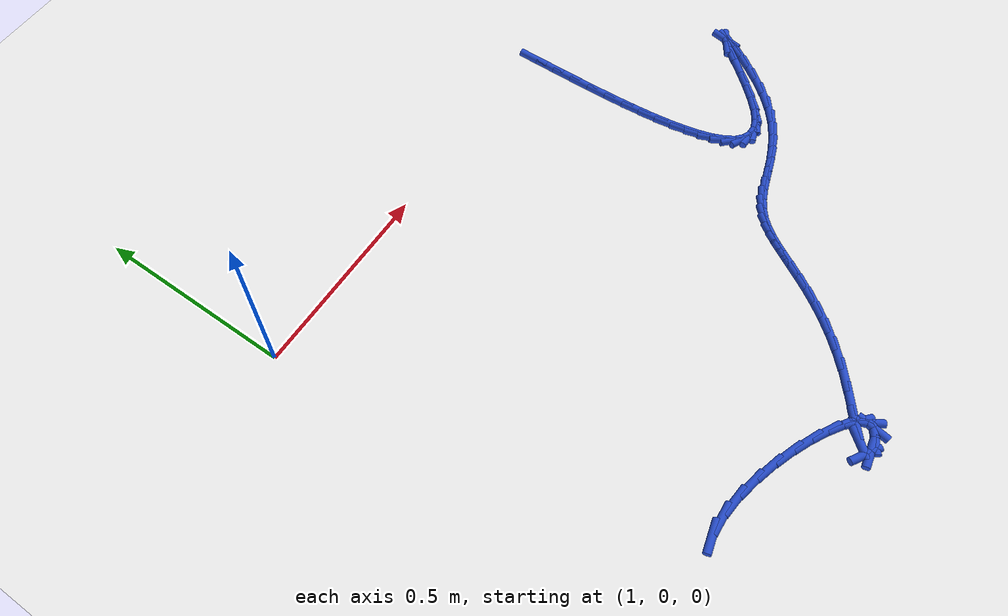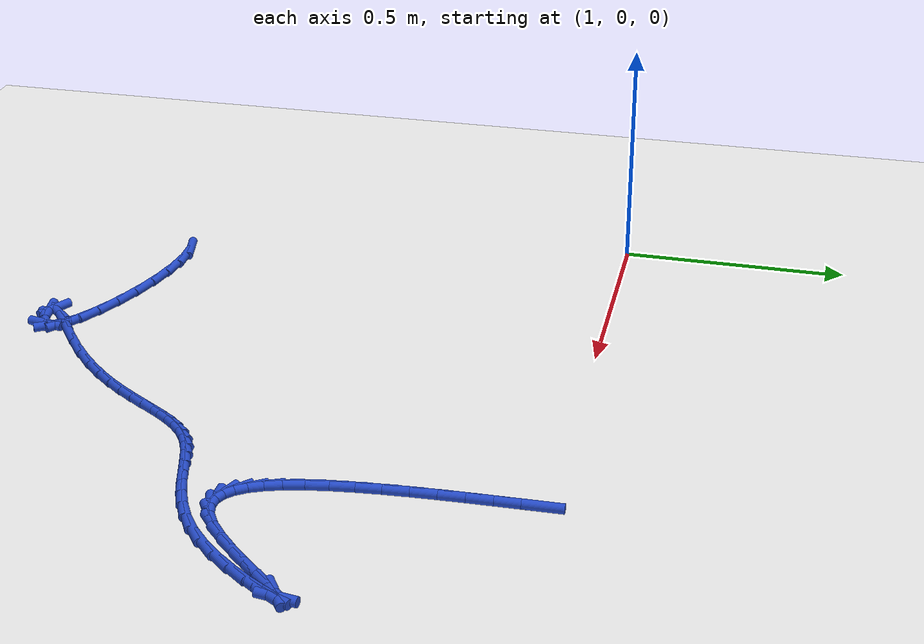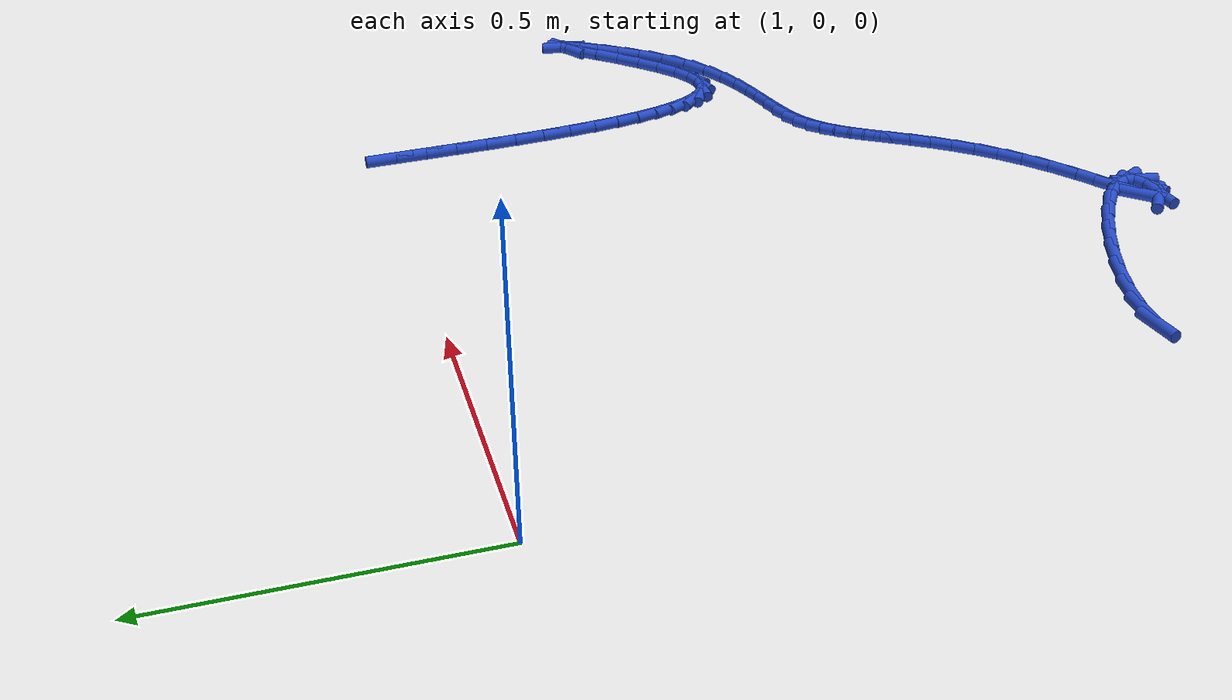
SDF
<sdf version="1.6">
 <world name="default">
  <model name="ground_plane">
   <static>1</static>
   <link name="link">
    <collision name="collision">
     <geometry><plane><normal>0 0 1</normal><size>100 100</size></plane></geometry>
     <surface><friction><ode><mu>100</mu><mu2>50</mu2></ode></friction></surface>
    </collision>
    <visual name="visual">
     <cast_shadows>0</cast_shadows>
     <geometry><plane><normal>0 0 1</normal><size>100 100</size></plane></geometry>
     <material>
      <script><uri>file://media/materials/scripts/gazebo.material</uri><name>Gazebo/WhiteGlow</name></script>
     </material>
    </visual>
   </link>
  </model>
  <model name="line">
   <link name="link_147">
    <pose>2.0611543120211264 -0.010461979637083191 0.01 0 1.57 -1.5509774519351642</pose>
    <collision name="collision">
     <geometry><cylinder><radius>0.01</radius><length>0.08</length></cylinder></geometry>
    </collision>
    <visual name="visual">
     <material>
      <script><name>Gazebo/Blue</name><uri>file://media/materials/scripts/gazebo.material</uri></script>
     </material>
     <geometry><cylinder><radius>0.01</radius><length>0.08</length></cylinder></geometry>
    </visual>
   </link>
   <link name="link_148">
    <pose>2.0621592273593397 -0.06116030479683935 0.01 0 1.57 -1.549474797289015</pose>
    <collision name="collision">
     <geometry><cylinder><radius>0.01</radius><length>0.08</length></cylinder></geometry>
    </collision>
    <visual name="visual">
     <material>
      <script><name>Gazebo/Blue</name><uri>file://media/materials/scripts/gazebo.material</uri></script>
     </material>
     <geometry><cylinder><radius>0.01</radius><length>0.08</length></cylinder></geometry>
    </visual>
   </link>
   <link name="link_149">
    <pose>2.0632646716212597 -0.11299883458318614 0.01 0 1.57 -1.5442666808522096</pose>
    <collision name="collision">
     <geometry><cylinder><radius>0.01</radius><length>0.08</length></cylinder></geometry>
    </collision>
    <visual name="visual">
     <material>
      <script><name>Gazebo/Blue</name><uri>file://media/materials/scripts/gazebo.material</uri></script>
     </material>
     <geometry><cylinder><radius>0.01</radius><length>0.08</length></cylinder></geometry>
    </visual>
   </link>
   <link name="link_150">
    <pose>2.06465350074113 -0.16533663351317263 0.01 0 1.57 -1.5352709084533727</pose>
    <collision name="collision">
     <geometry><cylinder><radius>0.01</radius><length>0.08</length></cylinder></geometry>
    </collision>
    <visual name="visual">
     <material>
      <script><name>Gazebo/Blue</name><uri>file://media/materials/scripts/gazebo.material</uri></script>
     </material>
     <geometry><cylinder><radius>0.01</radius><length>0.08</length></cylinder></geometry>
    </visual>
   </link>
   <link name="link_151">
    <pose>2.0665085706531934 -0.21753276610384759 0.01 0 1.57 -1.522128414002141</pose>
    <collision name="collision">
     <geometry><cylinder><radius>0.01</radius><length>0.08</length></cylinder></geometry>
    </collision>
    <visual name="visual">
     <material>
      <script><name>Gazebo/Blue</name><uri>file://media/materials/scripts/gazebo.material</uri></script>
     </material>
     <geometry><cylinder><radius>0.01</radius><length>0.08</length></cylinder></geometry>
    </visual>
   </link>
   <link name="link_152">
    <pose>2.0690127372916924 -0.2689462968722586 0.01 0 1.57 -1.5041593937868303</pose>
    <collision name="collision">
     <geometry><cylinder><radius>0.01</radius><length>0.08</length></cylinder></geometry>
    </collision>
    <visual name="visual">
     <material>
      <script><name>Gazebo/Blue</name><uri>file://media/materials/scripts/gazebo.material</uri></script>
     </material>
     <geometry><cylinder><radius>0.01</radius><length>0.08</length></cylinder></geometry>
    </visual>
   </link>
   <link name="link_153">
    <pose>2.0723488565908723 -0.318936290335458 0.01 0 1.57 -1.48025931814508</pose>
    <collision name="collision">
     <geometry><cylinder><radius>0.01</radius><length>0.08</length></cylinder></geometry>
    </collision>
    <visual name="visual">
     <material>
      <script><name>Gazebo/Blue</name><uri>file://media/materials/scripts/gazebo.material</uri></script>
     </material>
     <geometry><cylinder><radius>0.01</radius><length>0.08</length></cylinder></geometry>
    </visual>
   </link>
   <link name="link_154">
    <pose>2.076699784484975 -0.36686181101049276 0.01 0 1.57 -1.4487047412177834</pose>
    <collision name="collision">
     <geometry><cylinder><radius>0.01</radius><length>0.08</length></cylinder></geometry>
    </collision>
    <visual name="visual">
     <material>
      <script><name>Gazebo/Blue</name><uri>file://media/materials/scripts/gazebo.material</uri></script>
     </material>
     <geometry><cylinder><radius>0.01</radius><length>0.08</length></cylinder></geometry>
    </visual>
   </link>
   <link name="link_155">
    <pose>2.0822483769082445 -0.4120819234144121 0.01 0 1.57 -1.4068061464861068</pose>
    <collision name="collision">
     <geometry><cylinder><radius>0.01</radius><length>0.08</length></cylinder></geometry>
    </collision>
    <visual name="visual">
     <material>
      <script><name>Gazebo/Blue</name><uri>file://media/materials/scripts/gazebo.material</uri></script>
     </material>
     <geometry><cylinder><radius>0.01</radius><length>0.08</length></cylinder></geometry>
    </visual>
   </link>
   <link name="link_156">
    <pose>2.0891774897949236 -0.4539556920642649 0.01 0 1.57 -1.3502852260576796</pose>
    <collision name="collision">
     <geometry><cylinder><radius>0.01</radius><length>0.08</length></cylinder></geometry>
    </collision>
    <visual name="visual">
     <material>
      <script><name>Gazebo/Blue</name><uri>file://media/materials/scripts/gazebo.material</uri></script>
     </material>
     <geometry><cylinder><radius>0.01</radius><length>0.08</length></cylinder></geometry>
    </visual>
   </link>
   <link name="link_157">
    <pose>2.0976699790792557 -0.4918421814771002 0.01 0 1.57 -1.2721489050562054</pose>
    <collision name="collision">
     <geometry><cylinder><radius>0.01</radius><length>0.08</length></cylinder></geometry>
    </collision>
    <visual name="visual">
     <material>
      <script><name>Gazebo/Blue</name><uri>file://media/materials/scripts/gazebo.material</uri></script>
     </material>
     <geometry><cylinder><radius>0.01</radius><length>0.08</length></cylinder></geometry>
    </visual>
   </link>
   <link name="link_158">
    <pose>2.107908700695485 -0.5251004561699669 0.01 0 1.57 -1.1607102933476627</pose>
    <collision name="collision">
     <geometry><cylinder><radius>0.01</radius><length>0.08</length></cylinder></geometry>
    </collision>
    <visual name="visual">
     <material>
      <script><name>Gazebo/Blue</name><uri>file://media/materials/scripts/gazebo.material</uri></script>
     </material>
     <geometry><cylinder><radius>0.01</radius><length>0.08</length></cylinder></geometry>
    </visual>
   </link>
   <link name="link_159">
    <pose>2.1200765105778534 -0.5530895806599141 0.01 0 1.57 -0.9967048755928861</pose>
    <collision name="collision">
     <geometry><cylinder><radius>0.01</radius><length>0.08</length></cylinder></geometry>
    </collision>
    <visual name="visual">
     <material>
      <script><name>Gazebo/Blue</name><uri>file://media/materials/scripts/gazebo.material</uri></script>
     </material>
     <geometry><cylinder><radius>0.01</radius><length>0.08</length></cylinder></geometry>
    </visual>
   </link>
   <link name="link_160">
    <pose>2.134356264660606 -0.5751686194639907 0.01 0 1.57 -0.7528099306161224</pose>
    <collision name="collision">
     <geometry><cylinder><radius>0.01</radius><length>0.08</length></cylinder></geometry>
    </collision>
    <visual name="visual">
     <material>
      <script><name>Gazebo/Blue</name><uri>file://media/materials/scripts/gazebo.material</uri></script>
     </material>
     <geometry><cylinder><radius>0.01</radius><length>0.08</length></cylinder></geometry>
    </visual>
   </link>
   <link name="link_161">
    <pose>2.1509308188779843 -0.5906966370992457 0.01 0 1.57 -0.41244211593292934</pose>
    <collision name="collision">
     <geometry><cylinder><radius>0.01</radius><length>0.08</length></cylinder></geometry>
    </collision>
    <visual name="visual">
     <material>
      <script><name>Gazebo/Blue</name><uri>file://media/materials/scripts/gazebo.material</uri></script>
     </material>
     <geometry><cylinder><radius>0.01</radius><length>0.08</length></cylinder></geometry>
    </visual>
   </link>
   <link name="link_162">
    <pose>2.169983029164233 -0.599032698082728 0.01 0 1.57 -0.023169771101456314</pose>
    <collision name="collision">
     <geometry><cylinder><radius>0.01</radius><length>0.08</length></cylinder></geometry>
    </collision>
    <visual name="visual">
     <material>
      <script><name>Gazebo/Blue</name><uri>file://media/materials/scripts/gazebo.material</uri></script>
     </material>
     <geometry><cylinder><radius>0.01</radius><length>0.08</length></cylinder></geometry>
    </visual>
   </link>
   <link name="link_163">
    <pose>2.1916957514535946 -0.5995358669314865 0.01 0 1.57 0.313860929193127</pose>
    <collision name="collision">
     <geometry><cylinder><radius>0.01</radius><length>0.08</length></cylinder></geometry>
    </collision>
    <visual name="visual">
     <material>
      <script><name>Gazebo/Blue</name><uri>file://media/materials/scripts/gazebo.material</uri></script>
     </material>
     <geometry><cylinder><radius>0.01</radius><length>0.08</length></cylinder></geometry>
    </visual>
   </link>
   <link name="link_164">
    <pose>2.2162518416803128 -0.5915652081625704 0.01 0 1.57 0.5545772886350152</pose>
    <collision name="collision">
     <geometry><cylinder><radius>0.01</radius><length>0.08</length></cylinder></geometry>
    </collision>
    <visual name="visual">
     <material>
      <script><name>Gazebo/Blue</name><uri>file://media/materials/scripts/gazebo.material</uri></script>
     </material>
     <geometry><cylinder><radius>0.01</radius><length>0.08</length></cylinder></geometry>
    </visual>
   </link>
   <link name="link_165">
    <pose>2.2438339027798753 -0.5744803040544402 0.01 0 1.57 0.7069387026440537</pose>
    <collision name="collision">
     <geometry><cylinder><radius>0.01</radius><length>0.08</length></cylinder></geometry>
    </collision>
    <visual name="visual">
     <material>
      <script><name>Gazebo/Blue</name><uri>file://media/materials/scripts/gazebo.material</uri></script>
     </material>
     <geometry><cylinder><radius>0.01</radius><length>0.08</length></cylinder></geometry>
    </visual>
   </link>
   <link name="link_166">
    <pose>2.2741736351213473 -0.5485635080187564 0.01 0 1.57 0.788451773862675</pose>
    <collision name="collision">
     <geometry><cylinder><radius>0.01</radius><length>0.08</length></cylinder></geometry>
    </collision>
    <visual name="visual">
     <material>
      <script><name>Gazebo/Blue</name><uri>file://media/materials/scripts/gazebo.material</uri></script>
     </material>
     <geometry><cylinder><radius>0.01</radius><length>0.08</length></cylinder></geometry>
    </visual>
   </link>
   <link name="link_167">
    <pose>2.305622346863001 -0.5169221431601434 0.01 0 1.57 0.8331221551957187</pose>
    <collision name="collision">
     <geometry><cylinder><radius>0.01</radius><length>0.08</length></cylinder></geometry>
    </collision>
    <visual name="visual">
     <material>
      <script><name>Gazebo/Blue</name><uri>file://media/materials/scripts/gazebo.material</uri></script>
     </material>
     <geometry><cylinder><radius>0.01</radius><length>0.08</length></cylinder></geometry>
    </visual>
   </link>
   <link name="link_168">
    <pose>2.336268093693589 -0.4832022781963749 0.01 0 1.57 0.8555431865400999</pose>
    <collision name="collision">
     <geometry><cylinder><radius>0.01</radius><length>0.08</length></cylinder></geometry>
    </collision>
    <visual name="visual">
     <material>
      <script><name>Gazebo/Blue</name><uri>file://media/materials/scripts/gazebo.material</uri></script>
     </material>
     <geometry><cylinder><radius>0.01</radius><length>0.08</length></cylinder></geometry>
    </visual>
   </link>
   <link name="link_169">
    <pose>2.364198931301862 -0.4510499818452259 0.01 0 1.57 0.8576147896698619</pose>
    <collision name="collision">
     <geometry><cylinder><radius>0.01</radius><length>0.08</length></cylinder></geometry>
    </collision>
    <visual name="visual">
     <material>
      <script><name>Gazebo/Blue</name><uri>file://media/materials/scripts/gazebo.material</uri></script>
     </material>
     <geometry><cylinder><radius>0.01</radius><length>0.08</length></cylinder></geometry>
    </visual>
   </link>
   <link name="link_170">
    <pose>2.3875029153765737 -0.4241113228244677 0.01 0 1.57 0.8230844071525463</pose>
    <collision name="collision">
     <geometry><cylinder><radius>0.01</radius><length>0.08</length></cylinder></geometry>
    </collision>
    <visual name="visual">
     <material>
      <script><name>Gazebo/Blue</name><uri>file://media/materials/scripts/gazebo.material</uri></script>
     </material>
     <geometry><cylinder><radius>0.01</radius><length>0.08</length></cylinder></geometry>
    </visual>
   </link>
   <link name="link_171">
    <pose>2.404268101606475 -0.40603236985187535 0.01 0 1.57 0.5905329469020204</pose>
    <collision name="collision">
     <geometry><cylinder><radius>0.01</radius><length>0.08</length></cylinder></geometry>
    </collision>
    <visual name="visual">
     <material>
      <script><name>Gazebo/Blue</name><uri>file://media/materials/scripts/gazebo.material</uri></script>
     </material>
     <geometry><cylinder><radius>0.01</radius><length>0.08</length></cylinder></geometry>
    </visual>
   </link>
   <link name="link_172">
    <pose>2.41258269804712 -0.4004588647882971 0.01 0 1.57 1.4205634051946396</pose>
    <collision name="collision">
     <geometry><cylinder><radius>0.01</radius><length>0.08</length></cylinder></geometry>
    </collision>
    <visual name="visual">
     <material>
      <script><name>Gazebo/Blue</name><uri>file://media/materials/scripts/gazebo.material</uri></script>
     </material>
     <geometry><cylinder><radius>0.01</radius><length>0.08</length></cylinder></geometry>
    </visual>
   </link>
   <link name="link_173">
    <pose>2.411196280569169 -0.40961778472653576 0.01 0 1.57 1.1283777249353806</pose>
    <collision name="collision">
     <geometry><cylinder><radius>0.01</radius><length>0.08</length></cylinder></geometry>
    </collision>
    <visual name="visual">
     <material>
      <script><name>Gazebo/Blue</name><uri>file://media/materials/scripts/gazebo.material</uri></script>
     </material>
     <geometry><cylinder><radius>0.01</radius><length>0.08</length></cylinder></geometry>
    </visual>
   </link>
   <link name="link_174">
    <pose>2.4010351877707614 -0.4310665201910689 0.01 0 1.57 1.0460271013182592</pose>
    <collision name="collision">
     <geometry><cylinder><radius>0.01</radius><length>0.08</length></cylinder></geometry>
    </collision>
    <visual name="visual">
     <material>
      <script><name>Gazebo/Blue</name><uri>file://media/materials/scripts/gazebo.material</uri></script>
     </material>
     <geometry><cylinder><radius>0.01</radius><length>0.08</length></cylinder></geometry>
    </visual>
   </link>
   <link name="link_175">
    <pose>2.3834729385480333 -0.46140317152431104 0.01 0 1.57 0.9884560450684023</pose>
    <collision name="collision">
     <geometry><cylinder><radius>0.01</radius><length>0.08</length></cylinder></geometry>
    </collision>
    <visual name="visual">
     <material>
      <script><name>Gazebo/Blue</name><uri>file://media/materials/scripts/gazebo.material</uri></script>
     </material>
     <geometry><cylinder><radius>0.01</radius><length>0.08</length></cylinder></geometry>
    </visual>
   </link>
   <link name="link_176">
    <pose>2.3598830517971243 -0.4972258390686773 0.01 0 1.57 0.9304443590158629</pose>
    <collision name="collision">
     <geometry><cylinder><radius>0.01</radius><length>0.08</length></cylinder></geometry>
    </collision>
    <visual name="visual">
     <material>
      <script><name>Gazebo/Blue</name><uri>file://media/materials/scripts/gazebo.material</uri></script>
     </material>
     <geometry><cylinder><radius>0.01</radius><length>0.08</length></cylinder></geometry>
    </visual>
   </link>
   <link name="link_177">
    <pose>2.331639046414169 -0.5351326231665817 0.01 0 1.57 0.8596137949605455</pose>
    <collision name="collision">
     <geometry><cylinder><radius>0.01</radius><length>0.08</length></cylinder></geometry>
    </collision>
    <visual name="visual">
     <material>
      <script><name>Gazebo/Blue</name><uri>file://media/materials/scripts/gazebo.material</uri></script>
     </material>
     <geometry><cylinder><radius>0.01</radius><length>0.08</length></cylinder></geometry>
    </visual>
   </link>
   <link name="link_178">
    <pose>2.300114441295307 -0.5717216241604395 0.01 0 1.57 0.7618944416582972</pose>
    <collision name="collision">
     <geometry><cylinder><radius>0.01</radius><length>0.08</length></cylinder></geometry>
    </collision>
    <visual name="visual">
     <material>
      <script><name>Gazebo/Blue</name><uri>file://media/materials/scripts/gazebo.material</uri></script>
     </material>
     <geometry><cylinder><radius>0.01</radius><length>0.08</length></cylinder></geometry>
    </visual>
   </link>
   <link name="link_179">
    <pose>2.266676347655177 -0.6036236978339786 0.01 0 1.57 0.6402758263875179</pose>
    <collision name="collision">
     <geometry><cylinder><radius>0.01</radius><length>0.08</length></cylinder></geometry>
    </collision>
    <visual name="visual">
     <material>
      <script><name>Gazebo/Blue</name><uri>file://media/materials/scripts/gazebo.material</uri></script>
     </material>
     <geometry><cylinder><radius>0.01</radius><length>0.08</length></cylinder></geometry>
    </visual>
   </link>
   <link name="link_180">
    <pose>2.2323549125171693 -0.6291922279704988 0.01 0 1.57 0.525971358672393</pose>
    <collision name="collision">
     <geometry><cylinder><radius>0.01</radius><length>0.08</length></cylinder></geometry>
    </collision>
    <visual name="visual">
     <material>
      <script><name>Gazebo/Blue</name><uri>file://media/materials/scripts/gazebo.material</uri></script>
     </material>
     <geometry><cylinder><radius>0.01</radius><length>0.08</length></cylinder></geometry>
    </visual>
   </link>
   <link name="link_181">
    <pose>2.197683609224731 -0.6493195456437174 0.01 0 1.57 0.4287346770960441</pose>
    <collision name="collision">
     <geometry><cylinder><radius>0.01</radius><length>0.08</length></cylinder></geometry>
    </collision>
    <visual name="visual">
     <material>
      <script><name>Gazebo/Blue</name><uri>file://media/materials/scripts/gazebo.material</uri></script>
     </material>
     <geometry><cylinder><radius>0.01</radius><length>0.08</length></cylinder></geometry>
    </visual>
   </link>
   <link name="link_182">
    <pose>2.1631560467575577 -0.665101764657208 0.01 0 1.57 0.3542204349589233</pose>
    <collision name="collision">
     <geometry><cylinder><radius>0.01</radius><length>0.08</length></cylinder></geometry>
    </collision>
    <visual name="visual">
     <material>
      <script><name>Gazebo/Blue</name><uri>file://media/materials/scripts/gazebo.material</uri></script>
     </material>
     <geometry><cylinder><radius>0.01</radius><length>0.08</length></cylinder></geometry>
    </visual>
   </link>
   <link name="link_183">
    <pose>2.1292658340953414 -0.6776349988145444 0.01 0 1.57 0.30685939961179637</pose>
    <collision name="collision">
     <geometry><cylinder><radius>0.01</radius><length>0.08</length></cylinder></geometry>
    </collision>
    <visual name="visual">
     <material>
      <script><name>Gazebo/Blue</name><uri>file://media/materials/scripts/gazebo.material</uri></script>
     </material>
     <geometry><cylinder><radius>0.01</radius><length>0.08</length></cylinder></geometry>
    </visual>
   </link>
   <link name="link_184">
    <pose>2.096506580217775 -0.688015361919299 0.01 0 1.57 0.2909616839103315</pose>
    <collision name="collision">
     <geometry><cylinder><radius>0.01</radius><length>0.08</length></cylinder></geometry>
    </collision>
    <visual name="visual">
     <material>
      <script><name>Gazebo/Blue</name><uri>file://media/materials/scripts/gazebo.material</uri></script>
     </material>
     <geometry><cylinder><radius>0.01</radius><length>0.08</length></cylinder></geometry>
    </visual>
   </link>
   <link name="link_185">
    <pose>2.06537189410455 -0.6973389677750462 0.01 0 1.57 0.31212946161935506</pose>
    <collision name="collision">
     <geometry><cylinder><radius>0.01</radius><length>0.08</length></cylinder></geometry>
    </collision>
    <visual name="visual">
     <material>
      <script><name>Gazebo/Blue</name><uri>file://media/materials/scripts/gazebo.material</uri></script>
     </material>
     <geometry><cylinder><radius>0.01</radius><length>0.08</length></cylinder></geometry>
    </visual>
   </link>
   <link name="link_186">
    <pose>2.0363553847353595 -0.7067019301853592 0.01 0 1.57 0.3784329096512303</pose>
    <collision name="collision">
     <geometry><cylinder><radius>0.01</radius><length>0.08</length></cylinder></geometry>
    </collision>
    <visual name="visual">
     <material>
      <script><name>Gazebo/Blue</name><uri>file://media/materials/scripts/gazebo.material</uri></script>
     </material>
     <geometry><cylinder><radius>0.01</radius><length>0.08</length></cylinder></geometry>
    </visual>
   </link>
   <link name="link_187">
    <pose>2.0099506610898965 -0.7172003629538108 0.01 0 1.57 0.4987577987291841</pose>
    <collision name="collision">
     <geometry><cylinder><radius>0.01</radius><length>0.08</length></cylinder></geometry>
    </collision>
    <visual name="visual">
     <material>
      <script><name>Gazebo/Blue</name><uri>file://media/materials/scripts/gazebo.material</uri></script>
     </material>
     <geometry><cylinder><radius>0.01</radius><length>0.08</length></cylinder></geometry>
    </visual>
   </link>
   <link name="link_188">
    <pose>1.9866268735359158 -0.7299046119816777 0.01 0 1.57 0.6472622356242058</pose>
    <collision name="collision">
     <geometry><cylinder><radius>0.01</radius><length>0.08</length></cylinder></geometry>
    </collision>
    <visual name="visual">
     <material>
      <script><name>Gazebo/Blue</name><uri>file://media/materials/scripts/gazebo.material</uri></script>
     </material>
     <geometry><cylinder><radius>0.01</radius><length>0.08</length></cylinder></geometry>
    </visual>
   </link>
   <link name="link_189">
    <pose>1.966281940584422 -0.7452832127849497 0.01 0 1.57 0.7817910725863971</pose>
    <collision name="collision">
     <geometry><cylinder><radius>0.01</radius><length>0.08</length></cylinder></geometry>
    </collision>
    <visual name="visual">
     <material>
      <script><name>Gazebo/Blue</name><uri>file://media/materials/scripts/gazebo.material</uri></script>
     </material>
     <geometry><cylinder><radius>0.01</radius><length>0.08</length></cylinder></geometry>
    </visual>
   </link>
   <link name="link_190">
    <pose>1.9482376825072978 -0.76319776361036 0.01 0 1.57 0.8895085234732826</pose>
    <collision name="collision">
     <geometry><cylinder><radius>0.01</radius><length>0.08</length></cylinder></geometry>
    </collision>
    <visual name="visual">
     <material>
      <script><name>Gazebo/Blue</name><uri>file://media/materials/scripts/gazebo.material</uri></script>
     </material>
     <geometry><cylinder><radius>0.01</radius><length>0.08</length></cylinder></geometry>
    </visual>
   </link>
   <link name="link_191">
    <pose>1.931790487666056 -0.7834830694024195 0.01 0 1.57 0.9657584784247002</pose>
    <collision name="collision">
     <geometry><cylinder><radius>0.01</radius><length>0.08</length></cylinder></geometry>
    </collision>
    <visual name="visual">
     <material>
      <script><name>Gazebo/Blue</name><uri>file://media/materials/scripts/gazebo.material</uri></script>
     </material>
     <geometry><cylinder><radius>0.01</radius><length>0.08</length></cylinder></geometry>
    </visual>
   </link>
   <link name="link_192">
    <pose>1.9162367444222137 -0.8059739351056393 0.01 0 1.57 1.0112629139386644</pose>
    <collision name="collision">
     <geometry><cylinder><radius>0.01</radius><length>0.08</length></cylinder></geometry>
    </collision>
    <visual name="visual">
     <material>
      <script><name>Gazebo/Blue</name><uri>file://media/materials/scripts/gazebo.material</uri></script>
     </material>
     <geometry><cylinder><radius>0.01</radius><length>0.08</length></cylinder></geometry>
    </visual>
   </link>
   <link name="link_193">
    <pose>1.9008728411372837 -0.83050516566453 0.01 0 1.57 1.02943522036749</pose>
    <collision name="collision">
     <geometry><cylinder><radius>0.01</radius><length>0.08</length></cylinder></geometry>
    </collision>
    <visual name="visual">
     <material>
      <script><name>Gazebo/Blue</name><uri>file://media/materials/scripts/gazebo.material</uri></script>
     </material>
     <geometry><cylinder><radius>0.01</radius><length>0.08</length></cylinder></geometry>
    </visual>
   </link>
   <link name="link_194">
    <pose>1.8849951661727813 -0.8569115660236029 0.01 0 1.57 1.0245073811607819</pose>
    <collision name="collision">
     <geometry><cylinder><radius>0.01</radius><length>0.08</length></cylinder></geometry>
    </collision>
    <visual name="visual">
     <material>
      <script><name>Gazebo/Blue</name><uri>file://media/materials/scripts/gazebo.material</uri></script>
     </material>
     <geometry><cylinder><radius>0.01</radius><length>0.08</length></cylinder></geometry>
    </visual>
   </link>
   <link name="link_195">
    <pose>1.867900107890221 -0.8850279411273684 0.01 0 1.57 1.0006963070894221</pose>
    <collision name="collision">
     <geometry><cylinder><radius>0.01</radius><length>0.08</length></cylinder></geometry>
    </collision>
    <visual name="visual">
     <material>
      <script><name>Gazebo/Blue</name><uri>file://media/materials/scripts/gazebo.material</uri></script>
     </material>
     <geometry><cylinder><radius>0.01</radius><length>0.08</length></cylinder></geometry>
    </visual>
   </link>
   <link name="link_196">
    <pose>1.8488840546511167 -0.9146890959203372 0.01 0 1.57 0.9619724879262249</pose>
    <collision name="collision">
     <geometry><cylinder><radius>0.01</radius><length>0.08</length></cylinder></geometry>
    </collision>
    <visual name="visual">
     <material>
      <script><name>Gazebo/Blue</name><uri>file://media/materials/scripts/gazebo.material</uri></script>
     </material>
     <geometry><cylinder><radius>0.01</radius><length>0.08</length></cylinder></geometry>
    </visual>
   </link>
   <link name="link_197">
    <pose>1.8272433948169833 -0.9457298353470206 0.01 0 1.57 0.9120452419685686</pose>
    <collision name="collision">
     <geometry><cylinder><radius>0.01</radius><length>0.08</length></cylinder></geometry>
    </collision>
    <visual name="visual">
     <material>
      <script><name>Gazebo/Blue</name><uri>file://media/materials/scripts/gazebo.material</uri></script>
     </material>
     <geometry><cylinder><radius>0.01</radius><length>0.08</length></cylinder></geometry>
    </visual>
   </link>
   <link name="link_198">
    <pose>1.802274516749336 -0.9779849643519294 0.01 0 1.57 0.8543619477379117</pose>
    <collision name="collision">
     <geometry><cylinder><radius>0.01</radius><length>0.08</length></cylinder></geometry>
    </collision>
    <visual name="visual">
     <material>
      <script><name>Gazebo/Blue</name><uri>file://media/materials/scripts/gazebo.material</uri></script>
     </material>
     <geometry><cylinder><radius>0.01</radius><length>0.08</length></cylinder></geometry>
    </visual>
   </link>
   <link name="link_199">
    <pose>1.773273808809689 -1.0112892878795745 0.01 0 1.57 0.7920550699466743</pose>
    <collision name="collision">
     <geometry><cylinder><radius>0.01</radius><length>0.08</length></cylinder></geometry>
    </collision>
    <visual name="visual">
     <material>
      <script><name>Gazebo/Blue</name><uri>file://media/materials/scripts/gazebo.material</uri></script>
     </material>
     <geometry><cylinder><radius>0.01</radius><length>0.08</length></cylinder></geometry>
    </visual>
   </link>
   <link name="link_200">
    <pose>1.7395376593595562 -1.0454776108744663 0.01 0 1.57 0.7278491856548148</pose>
    <collision name="collision">
     <geometry><cylinder><radius>0.01</radius><length>0.08</length></cylinder></geometry>
    </collision>
    <visual name="visual">
     <material>
      <script><name>Gazebo/Blue</name><uri>file://media/materials/scripts/gazebo.material</uri></script>
     </material>
     <geometry><cylinder><radius>0.01</radius><length>0.08</length></cylinder></geometry>
    </visual>
   </link>
   <link name="link_201">
    <pose>1.7003624567604545 -1.080384738281115 0.01 0 1.57 0.6669488344694382</pose>
    <collision name="collision">
     <geometry><cylinder><radius>0.01</radius><length>0.08</length></cylinder></geometry>
    </collision>
    <visual name="visual">
     <material>
      <script><name>Gazebo/Blue</name><uri>file://media/materials/scripts/gazebo.material</uri></script>
     </material>
     <geometry><cylinder><radius>0.01</radius><length>0.08</length></cylinder></geometry>
    </visual>
   </link>
   <link name="link_202">
    <pose>1.6555176210102953 -1.1156910709630599 0.01 0 1.57 0.6403788961883898</pose>
    <collision name="collision">
     <geometry><cylinder><radius>0.01</radius><length>0.08</length></cylinder></geometry>
    </collision>
    <visual name="visual">
     <material>
      <script><name>Gazebo/Blue</name><uri>file://media/materials/scripts/gazebo.material</uri></script>
     </material>
     <geometry><cylinder><radius>0.01</radius><length>0.08</length></cylinder></geometry>
    </visual>
   </link>
   <link name="link_203">
    <pose>1.6105661173262105 -1.1491859163424674 0.01 0 1.57 0.6698460581978118</pose>
    <collision name="collision">
     <geometry><cylinder><radius>0.01</radius><length>0.08</length></cylinder></geometry>
    </collision>
    <visual name="visual">
     <material>
      <script><name>Gazebo/Blue</name><uri>file://media/materials/scripts/gazebo.material</uri></script>
     </material>
     <geometry><cylinder><radius>0.01</radius><length>0.08</length></cylinder></geometry>
    </visual>
   </link>
   <link name="link_204">
    <pose>1.5749534740226205 -1.1773912594454334 0.01 0 1.57 0.8587435459382211</pose>
    <collision name="collision">
     <geometry><cylinder><radius>0.01</radius><length>0.08</length></cylinder></geometry>
    </collision>
    <visual name="visual">
     <material>
      <script><name>Gazebo/Blue</name><uri>file://media/materials/scripts/gazebo.material</uri></script>
     </material>
     <geometry><cylinder><radius>0.01</radius><length>0.08</length></cylinder></geometry>
    </visual>
   </link>
   <link name="link_205">
    <pose>1.5581967563475403 -1.1968057346516308 0.01 0 1.57 -0.5500586511273942</pose>
    <collision name="collision">
     <geometry><cylinder><radius>0.01</radius><length>0.08</length></cylinder></geometry>
    </collision>
    <visual name="visual">
     <material>
      <script><name>Gazebo/Blue</name><uri>file://media/materials/scripts/gazebo.material</uri></script>
     </material>
     <geometry><cylinder><radius>0.01</radius><length>0.08</length></cylinder></geometry>
    </visual>
   </link>
   <link name="link_206">
    <pose>1.569812169347117 -1.203928142290113 0.01 0 1.57 0.16540890509447675</pose>
    <collision name="collision">
     <geometry><cylinder><radius>0.01</radius><length>0.08</length></cylinder></geometry>
    </collision>
    <visual name="visual">
     <material>
      <script><name>Gazebo/Blue</name><uri>file://media/materials/scripts/gazebo.material</uri></script>
     </material>
     <geometry><cylinder><radius>0.01</radius><length>0.08</length></cylinder></geometry>
    </visual>
   </link>
   <link name="link_207">
    <pose>1.6040022030104202 -1.1982206586120159 0.01 0 1.57 0.5434310410244542</pose>
    <collision name="collision">
     <geometry><cylinder><radius>0.01</radius><length>0.08</length></cylinder></geometry>
    </collision>
    <visual name="visual">
     <material>
      <script><name>Gazebo/Blue</name><uri>file://media/materials/scripts/gazebo.material</uri></script>
     </material>
     <geometry><cylinder><radius>0.01</radius><length>0.08</length></cylinder></geometry>
    </visual>
   </link>
   <link name="link_208">
    <pose>1.6239673242562862 -1.18615966653906 0.01 0 1.57 1.401468084707029</pose>
    <collision name="collision">
     <geometry><cylinder><radius>0.01</radius><length>0.08</length></cylinder></geometry>
    </collision>
    <visual name="visual">
     <material>
      <script><name>Gazebo/Blue</name><uri>file://media/materials/scripts/gazebo.material</uri></script>
     </material>
     <geometry><cylinder><radius>0.01</radius><length>0.08</length></cylinder></geometry>
    </visual>
   </link>
   <link name="link_209">
    <pose>1.6267884044315613 -1.1696587780366163 0.01 0 1.57 -1.0242149708141723</pose>
    <collision name="collision">
     <geometry><cylinder><radius>0.01</radius><length>0.08</length></cylinder></geometry>
    </collision>
    <visual name="visual">
     <material>
      <script><name>Gazebo/Blue</name><uri>file://media/materials/scripts/gazebo.material</uri></script>
     </material>
     <geometry><cylinder><radius>0.01</radius><length>0.08</length></cylinder></geometry>
    </visual>
   </link>
   <link name="link_210">
    <pose>1.6147378512820296 -1.149852188977811 0.01 0 1.57 -0.7281627198657727</pose>
    <collision name="collision">
     <geometry><cylinder><radius>0.01</radius><length>0.08</length></cylinder></geometry>
    </collision>
    <visual name="visual">
     <material>
      <script><name>Gazebo/Blue</name><uri>file://media/materials/scripts/gazebo.material</uri></script>
     </material>
     <geometry><cylinder><radius>0.01</radius><length>0.08</length></cylinder></geometry>
    </visual>
   </link>
   <link name="link_211">
    <pose>1.5900880725534736 -1.1278740952357678 0.01 0 1.57 -0.5819945816832162</pose>
    <collision name="collision">
     <geometry><cylinder><radius>0.01</radius><length>0.08</length></cylinder></geometry>
    </collision>
    <visual name="visual">
     <material>
      <script><name>Gazebo/Blue</name><uri>file://media/materials/scripts/gazebo.material</uri></script>
     </material>
     <geometry><cylinder><radius>0.01</radius><length>0.08</length></cylinder></geometry>
    </visual>
   </link>
   <link name="link_212">
    <pose>1.555111475991677 -1.1048586926836121 0.01 0 1.57 -0.48938986329226075</pose>
    <collision name="collision">
     <geometry><cylinder><radius>0.01</radius><length>0.08</length></cylinder></geometry>
    </collision>
    <visual name="visual">
     <material>
      <script><name>Gazebo/Blue</name><uri>file://media/materials/scripts/gazebo.material</uri></script>
     </material>
     <geometry><cylinder><radius>0.01</radius><length>0.08</length></cylinder></geometry>
    </visual>
   </link>
   <link name="link_213">
    <pose>1.5120804693424232 -1.0819401771944688 0.01 0 1.57 -0.4181004993262208</pose>
    <collision name="collision">
     <geometry><cylinder><radius>0.01</radius><length>0.08</length></cylinder></geometry>
    </collision>
    <visual name="visual">
     <material>
      <script><name>Gazebo/Blue</name><uri>file://media/materials/scripts/gazebo.material</uri></script>
     </material>
     <geometry><cylinder><radius>0.01</radius><length>0.08</length></cylinder></geometry>
    </visual>
   </link>
   <link name="link_214">
    <pose>1.463267460351496 -1.0602527446414627 0.01 0 1.57 -0.3537542515258763</pose>
    <collision name="collision">
     <geometry><cylinder><radius>0.01</radius><length>0.08</length></cylinder></geometry>
    </collision>
    <visual name="visual">
     <material>
      <script><name>Gazebo/Blue</name><uri>file://media/materials/scripts/gazebo.material</uri></script>
     </material>
     <geometry><cylinder><radius>0.01</radius><length>0.08</length></cylinder></geometry>
    </visual>
   </link>
   <link name="link_215">
    <pose>1.4109448567646778 -1.0409305908977193 0.01 0 1.57 -0.2872504671008968</pose>
    <collision name="collision">
     <geometry><cylinder><radius>0.01</radius><length>0.08</length></cylinder></geometry>
    </collision>
    <visual name="visual">
     <material>
      <script><name>Gazebo/Blue</name><uri>file://media/materials/scripts/gazebo.material</uri></script>
     </material>
     <geometry><cylinder><radius>0.01</radius><length>0.08</length></cylinder></geometry>
    </visual>
   </link>
   <link name="link_216">
    <pose>1.3573850663277542 -1.0251079118363633 0.01 0 1.57 -0.20988696591490422</pose>
    <collision name="collision">
     <geometry><cylinder><radius>0.01</radius><length>0.08</length></cylinder></geometry>
    </collision>
    <visual name="visual">
     <material>
      <script><name>Gazebo/Blue</name><uri>file://media/materials/scripts/gazebo.material</uri></script>
     </material>
     <geometry><cylinder><radius>0.01</radius><length>0.08</length></cylinder></geometry>
    </visual>
   </link>
   <link name="link_217">
    <pose>1.3048604967865052 -1.0139189033305192 0.01 0 1.57 -0.10970564403719676</pose>
    <collision name="collision">
     <geometry><cylinder><radius>0.01</radius><length>0.08</length></cylinder></geometry>
    </collision>
    <visual name="visual">
     <material>
      <script><name>Gazebo/Blue</name><uri>file://media/materials/scripts/gazebo.material</uri></script>
     </material>
     <geometry><cylinder><radius>0.01</radius><length>0.08</length></cylinder></geometry>
    </visual>
   </link>
   <link name="link_218">
    <pose>1.2556435558867154 -1.0084977612533117 0.01 0 1.57 0.03332549545552218</pose>
    <collision name="collision">
     <geometry><cylinder><radius>0.01</radius><length>0.08</length></cylinder></geometry>
    </collision>
    <visual name="visual">
     <material>
      <script><name>Gazebo/Blue</name><uri>file://media/materials/scripts/gazebo.material</uri></script>
     </material>
     <geometry><cylinder><radius>0.01</radius><length>0.08</length></cylinder></geometry>
    </visual>
   </link>
   <link name="link_219">
    <pose>1.2119686175902367 -1.0099537892670045 0.01 0 1.57 0.22463854999123006</pose>
    <collision name="collision">
     <geometry><cylinder><radius>0.01</radius><length>0.08</length></cylinder></geometry>
    </collision>
    <visual name="visual">
     <material>
      <script><name>Gazebo/Blue</name><uri>file://media/materials/scripts/gazebo.material</uri></script>
     </material>
     <geometry><cylinder><radius>0.01</radius><length>0.08</length></cylinder></geometry>
    </visual>
   </link>
  </model>
 </world>
</sdf>
